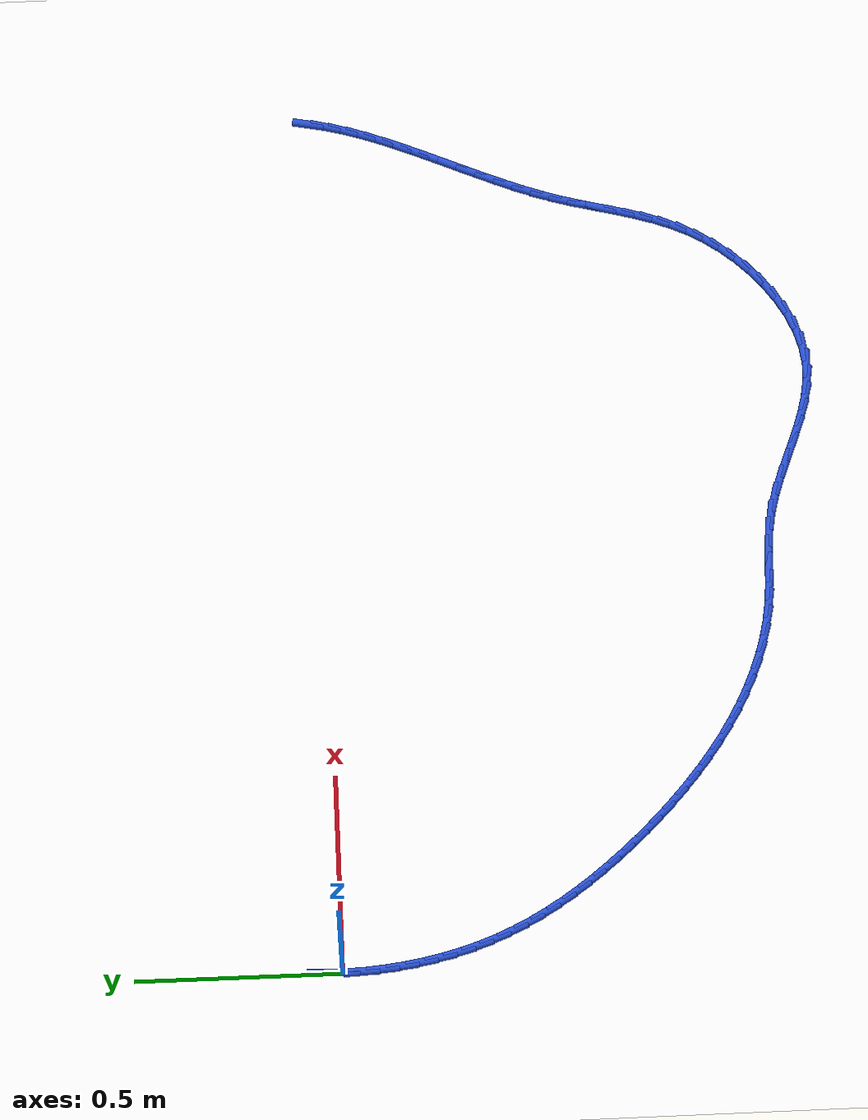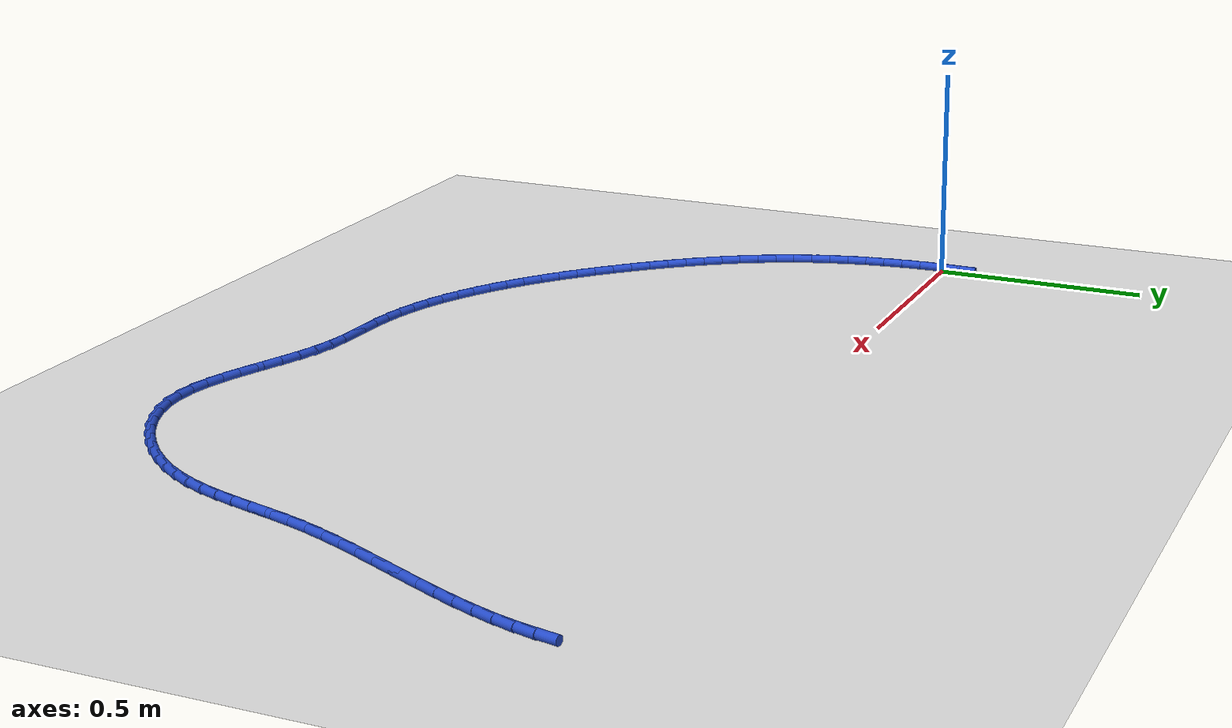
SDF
<sdf version="1.6">
 <world name="default">
  <model name="ground_plane">
   <static>1</static>
   <link name="link">
    <collision name="collision">
     <geometry><plane><normal>0 0 1</normal><size>100 100</size></plane></geometry>
     <surface><friction><ode><mu>100</mu><mu2>50</mu2></ode></friction></surface>
    </collision>
    <visual name="visual">
     <cast_shadows>0</cast_shadows>
     <geometry><plane><normal>0 0 1</normal><size>100 100</size></plane></geometry>
     <material>
      <script><uri>file://media/materials/scripts/gazebo.material</uri><name>Gazebo/WhiteGlow</name></script>
     </material>
    </visual>
   </link>
  </model>
  <model name="line">
   <link name="link_0">
    <pose>4.5102810375396984e-17 4.163336342344337e-17 0.01 0 1.57 1.5652334050064227</pose>
    <collision name="collision">
     <geometry><cylinder><radius>0.01</radius><length>0.08</length></cylinder></geometry>
    </collision>
    <visual name="visual">
     <material>
      <script><name>Gazebo/Blue</name><uri>file://media/materials/scripts/gazebo.material</uri></script>
     </material>
     <geometry><cylinder><radius>0.01</radius><length>0.08</length></cylinder></geometry>
    </visual>
   </link>
   <link name="link_1">
    <pose>0.0002659733554597218 0.04781131605921755 0.01 0 1.57 1.5226781634985618</pose>
    <collision name="collision">
     <geometry><cylinder><radius>0.01</radius><length>0.08</length></cylinder></geometry>
    </collision>
    <visual name="visual">
     <material>
      <script><name>Gazebo/Blue</name><uri>file://media/materials/scripts/gazebo.material</uri></script>
     </material>
     <geometry><cylinder><radius>0.01</radius><length>0.08</length></cylinder></geometry>
    </visual>
   </link>
   <link name="link_83">
    <pose>2.2477748122873398 0.009040442447347093 0.01 0 1.57 1.3710872096856035</pose>
    <collision name="collision">
     <geometry><cylinder><radius>0.01</radius><length>0.08</length></cylinder></geometry>
    </collision>
    <visual name="visual">
     <material>
      <script><name>Gazebo/Blue</name><uri>file://media/materials/scripts/gazebo.material</uri></script>
     </material>
     <geometry><cylinder><radius>0.01</radius><length>0.08</length></cylinder></geometry>
    </visual>
   </link>
   <link name="link_84">
    <pose>2.2389451572891836 -0.03458277958417397 0.01 0 1.57 1.3092850059011312</pose>
    <collision name="collision">
     <geometry><cylinder><radius>0.01</radius><length>0.08</length></cylinder></geometry>
    </collision>
    <visual name="visual">
     <material>
      <script><name>Gazebo/Blue</name><uri>file://media/materials/scripts/gazebo.material</uri></script>
     </material>
     <geometry><cylinder><radius>0.01</radius><length>0.08</length></cylinder></geometry>
    </visual>
   </link>
   <link name="link_85">
    <pose>2.2271120936104505 -0.07879531518507388 0.01 0 1.57 1.2591731441745422</pose>
    <collision name="collision">
     <geometry><cylinder><radius>0.01</radius><length>0.08</length></cylinder></geometry>
    </collision>
    <visual name="visual">
     <material>
      <script><name>Gazebo/Blue</name><uri>file://media/materials/scripts/gazebo.material</uri></script>
     </material>
     <geometry><cylinder><radius>0.01</radius><length>0.08</length></cylinder></geometry>
    </visual>
   </link>
   <link name="link_86">
    <pose>2.212702470968541 -0.12352927860869284 0.01 0 1.57 1.219535306974952</pose>
    <collision name="collision">
     <geometry><cylinder><radius>0.01</radius><length>0.08</length></cylinder></geometry>
    </collision>
    <visual name="visual">
     <material>
      <script><name>Gazebo/Blue</name><uri>file://media/materials/scripts/gazebo.material</uri></script>
     </material>
     <geometry><cylinder><radius>0.01</radius><length>0.08</length></cylinder></geometry>
    </visual>
   </link>
   <link name="link_87">
    <pose>2.1961431390808532 -0.16871678410837168 0.01 0 1.57 1.1892891814576432</pose>
    <collision name="collision">
     <geometry><cylinder><radius>0.01</radius><length>0.08</length></cylinder></geometry>
    </collision>
    <visual name="visual">
     <material>
      <script><name>Gazebo/Blue</name><uri>file://media/materials/scripts/gazebo.material</uri></script>
     </material>
     <geometry><cylinder><radius>0.01</radius><length>0.08</length></cylinder></geometry>
    </visual>
   </link>
   <link name="link_88">
    <pose>2.1778609476647866 -0.21428994593744888 0.01 0 1.57 1.1675504236602035</pose>
    <collision name="collision">
     <geometry><cylinder><radius>0.01</radius><length>0.08</length></cylinder></geometry>
    </collision>
    <visual name="visual">
     <material>
      <script><name>Gazebo/Blue</name><uri>file://media/materials/scripts/gazebo.material</uri></script>
     </material>
     <geometry><cylinder><radius>0.01</radius><length>0.08</length></cylinder></geometry>
    </visual>
   </link>
   <link name="link_89">
    <pose>2.1582827464377425 -0.2601808783492654 0.01 0 1.57 1.1536523906364358</pose>
    <collision name="collision">
     <geometry><cylinder><radius>0.01</radius><length>0.08</length></cylinder></geometry>
    </collision>
    <visual name="visual">
     <material>
      <script><name>Gazebo/Blue</name><uri>file://media/materials/scripts/gazebo.material</uri></script>
     </material>
     <geometry><cylinder><radius>0.01</radius><length>0.08</length></cylinder></geometry>
    </visual>
   </link>
   <link name="link_90">
    <pose>2.1378353851171186 -0.30632169559716116 0.01 0 1.57 1.1471455268170552</pose>
    <collision name="collision">
     <geometry><cylinder><radius>0.01</radius><length>0.08</length></cylinder></geometry>
    </collision>
    <visual name="visual">
     <material>
      <script><name>Gazebo/Blue</name><uri>file://media/materials/scripts/gazebo.material</uri></script>
     </material>
     <geometry><cylinder><radius>0.01</radius><length>0.08</length></cylinder></geometry>
    </visual>
   </link>
   <link name="link_91">
    <pose>2.1169457134203147 -0.3526445119344763 0.01 0 1.57 1.1477899408988608</pose>
    <collision name="collision">
     <geometry><cylinder><radius>0.01</radius><length>0.08</length></cylinder></geometry>
    </collision>
    <visual name="visual">
     <material>
      <script><name>Gazebo/Blue</name><uri>file://media/materials/scripts/gazebo.material</uri></script>
     </material>
     <geometry><cylinder><radius>0.01</radius><length>0.08</length></cylinder></geometry>
    </visual>
   </link>
   <link name="link_92">
    <pose>2.09604058106473 -0.3990814416145517 0.01 0 1.57 1.155547942514735</pose>
    <collision name="collision">
     <geometry><cylinder><radius>0.01</radius><length>0.08</length></cylinder></geometry>
    </collision>
    <visual name="visual">
     <material>
      <script><name>Gazebo/Blue</name><uri>file://media/materials/scripts/gazebo.material</uri></script>
     </material>
     <geometry><cylinder><radius>0.01</radius><length>0.08</length></cylinder></geometry>
    </visual>
   </link>
   <link name="link_93">
    <pose>2.075546837767765 -0.44556459889072597 0.01 0 1.57 1.1705791022941918</pose>
    <collision name="collision">
     <geometry><cylinder><radius>0.01</radius><length>0.08</length></cylinder></geometry>
    </collision>
    <visual name="visual">
     <material>
      <script><name>Gazebo/Blue</name><uri>file://media/materials/scripts/gazebo.material</uri></script>
     </material>
     <geometry><cylinder><radius>0.01</radius><length>0.08</length></cylinder></geometry>
    </visual>
   </link>
   <link name="link_94">
    <pose>2.055891333246818 -0.4920260980163398 0.01 0 1.57 1.1932374862866375</pose>
    <collision name="collision">
     <geometry><cylinder><radius>0.01</radius><length>0.08</length></cylinder></geometry>
    </collision>
    <visual name="visual">
     <material>
      <script><name>Gazebo/Blue</name><uri>file://media/materials/scripts/gazebo.material</uri></script>
     </material>
     <geometry><cylinder><radius>0.01</radius><length>0.08</length></cylinder></geometry>
    </visual>
   </link>
   <link name="link_95">
    <pose>2.0375009172192895 -0.5383980532447334 0.01 0 1.57 1.2240679854335232</pose>
    <collision name="collision">
     <geometry><cylinder><radius>0.01</radius><length>0.08</length></cylinder></geometry>
    </collision>
    <visual name="visual">
     <material>
      <script><name>Gazebo/Blue</name><uri>file://media/materials/scripts/gazebo.material</uri></script>
     </material>
     <geometry><cylinder><radius>0.01</radius><length>0.08</length></cylinder></geometry>
    </visual>
   </link>
   <link name="link_96">
    <pose>2.0208024394025776 -0.5846125788292474 0.01 0 1.57 1.2631511650652147</pose>
    <collision name="collision">
     <geometry><cylinder><radius>0.01</radius><length>0.08</length></cylinder></geometry>
    </collision>
    <visual name="visual">
     <material>
      <script><name>Gazebo/Blue</name><uri>file://media/materials/scripts/gazebo.material</uri></script>
     </material>
     <geometry><cylinder><radius>0.01</radius><length>0.08</length></cylinder></geometry>
    </visual>
   </link>
   <link name="link_97">
    <pose>2.00619030142422 -0.630601312910918 0.01 0 1.57 1.2979649701544727</pose>
    <collision name="collision">
     <geometry><cylinder><radius>0.01</radius><length>0.08</length></cylinder></geometry>
    </collision>
    <visual name="visual">
     <material>
      <script><name>Gazebo/Blue</name><uri>file://media/materials/scripts/gazebo.material</uri></script>
     </material>
     <geometry><cylinder><radius>0.01</radius><length>0.08</length></cylinder></geometry>
    </visual>
   </link>
   <link name="link_98">
    <pose>1.9934072330305035 -0.6762863316195438 0.01 0 1.57 1.3156475928918048</pose>
    <collision name="collision">
     <geometry><cylinder><radius>0.01</radius><length>0.08</length></cylinder></geometry>
    </collision>
    <visual name="visual">
     <material>
      <script><name>Gazebo/Blue</name><uri>file://media/materials/scripts/gazebo.material</uri></script>
     </material>
     <geometry><cylinder><radius>0.01</radius><length>0.08</length></cylinder></geometry>
    </visual>
   </link>
   <link name="link_99">
    <pose>1.9815928967130594 -0.7215808622515872 0.01 0 1.57 1.3148353547931533</pose>
    <collision name="collision">
     <geometry><cylinder><radius>0.01</radius><length>0.08</length></cylinder></geometry>
    </collision>
    <visual name="visual">
     <material>
      <script><name>Gazebo/Blue</name><uri>file://media/materials/scripts/gazebo.material</uri></script>
     </material>
     <geometry><cylinder><radius>0.01</radius><length>0.08</length></cylinder></geometry>
    </visual>
   </link>
   <link name="link_100">
    <pose>1.9698642461114846 -0.7663977988954886 0.01 0 1.57 1.2949529093852161</pose>
    <collision name="collision">
     <geometry><cylinder><radius>0.01</radius><length>0.08</length></cylinder></geometry>
    </collision>
    <visual name="visual">
     <material>
      <script><name>Gazebo/Blue</name><uri>file://media/materials/scripts/gazebo.material</uri></script>
     </material>
     <geometry><cylinder><radius>0.01</radius><length>0.08</length></cylinder></geometry>
    </visual>
   </link>
   <link name="link_101">
    <pose>1.9573382348653758 -0.8106500356396887 0.01 0 1.57 1.2558120415788456</pose>
    <collision name="collision">
     <geometry><cylinder><radius>0.01</radius><length>0.08</length></cylinder></geometry>
    </collision>
    <visual name="visual">
     <material>
      <script><name>Gazebo/Blue</name><uri>file://media/materials/scripts/gazebo.material</uri></script>
     </material>
     <geometry><cylinder><radius>0.01</radius><length>0.08</length></cylinder></geometry>
    </visual>
   </link>
   <link name="link_102">
    <pose>1.943131816614331 -0.8542504665726267 0.01 0 1.57 1.1978496219018502</pose>
    <collision name="collision">
     <geometry><cylinder><radius>0.01</radius><length>0.08</length></cylinder></geometry>
    </collision>
    <visual name="visual">
     <material>
      <script><name>Gazebo/Blue</name><uri>file://media/materials/scripts/gazebo.material</uri></script>
     </material>
     <geometry><cylinder><radius>0.01</radius><length>0.08</length></cylinder></geometry>
    </visual>
   </link>
   <link name="link_103">
    <pose>1.9263619449979466 -0.8971119857827438 0.01 0 1.57 1.122516184168797</pose>
    <collision name="collision">
     <geometry><cylinder><radius>0.01</radius><length>0.08</length></cylinder></geometry>
    </collision>
    <visual name="visual">
     <material>
      <script><name>Gazebo/Blue</name><uri>file://media/materials/scripts/gazebo.material</uri></script>
     </material>
     <geometry><cylinder><radius>0.01</radius><length>0.08</length></cylinder></geometry>
    </visual>
   </link>
   <link name="link_104">
    <pose>1.9061455736558193 -0.9391474873584794 0.01 0 1.57 1.0337504617442803</pose>
    <collision name="collision">
     <geometry><cylinder><radius>0.01</radius><length>0.08</length></cylinder></geometry>
    </collision>
    <visual name="visual">
     <material>
      <script><name>Gazebo/Blue</name><uri>file://media/materials/scripts/gazebo.material</uri></script>
     </material>
     <geometry><cylinder><radius>0.01</radius><length>0.08</length></cylinder></geometry>
    </visual>
   </link>
   <link name="link_105">
    <pose>1.8816797381843622 -0.9802374574217818 0.01 0 1.57 0.944769318520284</pose>
    <collision name="collision">
     <geometry><cylinder><radius>0.01</radius><length>0.08</length></cylinder></geometry>
    </collision>
    <visual name="visual">
     <material>
      <script><name>Gazebo/Blue</name><uri>file://media/materials/scripts/gazebo.material</uri></script>
     </material>
     <geometry><cylinder><radius>0.01</radius><length>0.08</length></cylinder></geometry>
    </visual>
   </link>
   <link name="link_106">
    <pose>1.8529790586135721 -1.0199315179401367 0.01 0 1.57 0.8596093381676212</pose>
    <collision name="collision">
     <geometry><cylinder><radius>0.01</radius><length>0.08</length></cylinder></geometry>
    </collision>
    <visual name="visual">
     <material>
      <script><name>Gazebo/Blue</name><uri>file://media/materials/scripts/gazebo.material</uri></script>
     </material>
     <geometry><cylinder><radius>0.01</radius><length>0.08</length></cylinder></geometry>
    </visual>
   </link>
   <link name="link_107">
    <pose>1.820536353875597 -1.0575857709595085 0.01 0 1.57 0.7752394532283311</pose>
    <collision name="collision">
     <geometry><cylinder><radius>0.01</radius><length>0.08</length></cylinder></geometry>
    </collision>
    <visual name="visual">
     <material>
      <script><name>Gazebo/Blue</name><uri>file://media/materials/scripts/gazebo.material</uri></script>
     </material>
     <geometry><cylinder><radius>0.01</radius><length>0.08</length></cylinder></geometry>
    </visual>
   </link>
   <link name="link_108">
    <pose>1.7848504652892025 -1.092553881356349 0.01 0 1.57 0.6887259955655184</pose>
    <collision name="collision">
     <geometry><cylinder><radius>0.01</radius><length>0.08</length></cylinder></geometry>
    </collision>
    <visual name="visual">
     <material>
      <script><name>Gazebo/Blue</name><uri>file://media/materials/scripts/gazebo.material</uri></script>
     </material>
     <geometry><cylinder><radius>0.01</radius><length>0.08</length></cylinder></geometry>
    </visual>
   </link>
   <link name="link_109">
    <pose>1.7464202341731556 -1.1241895140071094 0.01 0 1.57 0.5971316329668978</pose>
    <collision name="collision">
     <geometry><cylinder><radius>0.01</radius><length>0.08</length></cylinder></geometry>
    </collision>
    <visual name="visual">
     <material>
      <script><name>Gazebo/Blue</name><uri>file://media/materials/scripts/gazebo.material</uri></script>
     </material>
     <geometry><cylinder><radius>0.01</radius><length>0.08</length></cylinder></geometry>
    </visual>
   </link>
   <link name="link_110">
    <pose>1.7057445018462225 -1.1518463337882412 0.01 0 1.57 0.4973859232981495</pose>
    <collision name="collision">
     <geometry><cylinder><radius>0.01</radius><length>0.08</length></cylinder></geometry>
    </collision>
    <visual name="visual">
     <material>
      <script><name>Gazebo/Blue</name><uri>file://media/materials/scripts/gazebo.material</uri></script>
     </material>
     <geometry><cylinder><radius>0.01</radius><length>0.08</length></cylinder></geometry>
    </visual>
   </link>
   <link name="link_111">
    <pose>1.6633221096271695 -1.1748780055761963 0.01 0 1.57 0.38625931138778186</pose>
    <collision name="collision">
     <geometry><cylinder><radius>0.01</radius><length>0.08</length></cylinder></geometry>
    </collision>
    <visual name="visual">
     <material>
      <script><name>Gazebo/Blue</name><uri>file://media/materials/scripts/gazebo.material</uri></script>
     </material>
     <geometry><cylinder><radius>0.01</radius><length>0.08</length></cylinder></geometry>
    </visual>
   </link>
   <link name="link_112">
    <pose>1.6196518988347657 -1.192638194247425 0.01 0 1.57 0.2605446669493578</pose>
    <collision name="collision">
     <geometry><cylinder><radius>0.01</radius><length>0.08</length></cylinder></geometry>
    </collision>
    <visual name="visual">
     <material>
      <script><name>Gazebo/Blue</name><uri>file://media/materials/scripts/gazebo.material</uri></script>
     </material>
     <geometry><cylinder><radius>0.01</radius><length>0.08</length></cylinder></geometry>
    </visual>
   </link>
   <link name="link_113">
    <pose>1.5752327107877753 -1.2044805646783785 0.01 0 1.57 0.11761830782452308</pose>
    <collision name="collision">
     <geometry><cylinder><radius>0.01</radius><length>0.08</length></cylinder></geometry>
    </collision>
    <visual name="visual">
     <material>
      <script><name>Gazebo/Blue</name><uri>file://media/materials/scripts/gazebo.material</uri></script>
     </material>
     <geometry><cylinder><radius>0.01</radius><length>0.08</length></cylinder></geometry>
    </visual>
   </link>
   <link name="link_114">
    <pose>1.5305633634434004 -1.2097588602996894 0.01 0 1.57 -0.0346730230771585</pose>
    <collision name="collision">
     <geometry><cylinder><radius>0.01</radius><length>0.08</length></cylinder></geometry>
    </collision>
    <visual name="visual">
     <material>
      <script><name>Gazebo/Blue</name><uri>file://media/materials/scripts/gazebo.material</uri></script>
     </material>
     <geometry><cylinder><radius>0.01</radius><length>0.08</length></cylinder></geometry>
    </visual>
   </link>
   <link name="link_115">
    <pose>1.4860275164915278 -1.2082140487339141 0.01 0 1.57 -0.16386430653127954</pose>
    <collision name="collision">
     <geometry><cylinder><radius>0.01</radius><length>0.08</length></cylinder></geometry>
    </collision>
    <visual name="visual">
     <material>
      <script><name>Gazebo/Blue</name><uri>file://media/materials/scripts/gazebo.material</uri></script>
     </material>
     <geometry><cylinder><radius>0.01</radius><length>0.08</length></cylinder></geometry>
    </visual>
   </link>
   <link name="link_116">
    <pose>1.441626561703912 -1.2008724884760942 0.01 0 1.57 -0.2610349208139035</pose>
    <collision name="collision">
     <geometry><cylinder><radius>0.01</radius><length>0.08</length></cylinder></geometry>
    </collision>
    <visual name="visual">
     <material>
      <script><name>Gazebo/Blue</name><uri>file://media/materials/scripts/gazebo.material</uri></script>
     </material>
     <geometry><cylinder><radius>0.01</radius><length>0.08</length></cylinder></geometry>
    </visual>
   </link>
   <link name="link_117">
    <pose>1.3972826746458191 -1.1890269056235394 0.01 0 1.57 -0.3271908643853365</pose>
    <collision name="collision">
     <geometry><cylinder><radius>0.01</radius><length>0.08</length></cylinder></geometry>
    </collision>
    <visual name="visual">
     <material>
      <script><name>Gazebo/Blue</name><uri>file://media/materials/scripts/gazebo.material</uri></script>
     </material>
     <geometry><cylinder><radius>0.01</radius><length>0.08</length></cylinder></geometry>
    </visual>
   </link>
   <link name="link_118">
    <pose>1.3529180308825128 -1.1739700262735584 0.01 0 1.57 -0.3647069813679713</pose>
    <collision name="collision">
     <geometry><cylinder><radius>0.01</radius><length>0.08</length></cylinder></geometry>
    </collision>
    <visual name="visual">
     <material>
      <script><name>Gazebo/Blue</name><uri>file://media/materials/scripts/gazebo.material</uri></script>
     </material>
     <geometry><cylinder><radius>0.01</radius><length>0.08</length></cylinder></geometry>
    </visual>
   </link>
   <link name="link_119">
    <pose>1.3084548059792573 -1.1569945765234615 0.01 0 1.57 -0.3755807704922416</pose>
    <collision name="collision">
     <geometry><cylinder><radius>0.01</radius><length>0.08</length></cylinder></geometry>
    </collision>
    <visual name="visual">
     <material>
      <script><name>Gazebo/Blue</name><uri>file://media/materials/scripts/gazebo.material</uri></script>
     </material>
     <geometry><cylinder><radius>0.01</radius><length>0.08</length></cylinder></geometry>
    </visual>
   </link>
   <link name="link_120">
    <pose>1.2638151755013172 -1.1393932824705573 0.01 0 1.57 -0.36070677866257955</pose>
    <collision name="collision">
     <geometry><cylinder><radius>0.01</radius><length>0.08</length></cylinder></geometry>
    </collision>
    <visual name="visual">
     <material>
      <script><name>Gazebo/Blue</name><uri>file://media/materials/scripts/gazebo.material</uri></script>
     </material>
     <geometry><cylinder><radius>0.01</radius><length>0.08</length></cylinder></geometry>
    </visual>
   </link>
   <link name="link_121">
    <pose>1.2189213150139562 -1.1224588702121558 0.01 0 1.57 -0.3197492511933471</pose>
    <collision name="collision">
     <geometry><cylinder><radius>0.01</radius><length>0.08</length></cylinder></geometry>
    </collision>
    <visual name="visual">
     <material>
      <script><name>Gazebo/Blue</name><uri>file://media/materials/scripts/gazebo.material</uri></script>
     </material>
     <geometry><cylinder><radius>0.01</radius><length>0.08</length></cylinder></geometry>
    </visual>
   </link>
   <link name="link_122">
    <pose>1.17369540008244 -1.1074840658455662 0.01 0 1.57 -0.2514341034339196</pose>
    <collision name="collision">
     <geometry><cylinder><radius>0.01</radius><length>0.08</length></cylinder></geometry>
    </collision>
    <visual name="visual">
     <material>
      <script><name>Gazebo/Blue</name><uri>file://media/materials/scripts/gazebo.material</uri></script>
     </material>
     <geometry><cylinder><radius>0.01</radius><length>0.08</length></cylinder></geometry>
    </visual>
   </link>
   <link name="link_123">
    <pose>1.1280596062720325 -1.0957615954680981 0.01 0 1.57 -0.15989867733804816</pose>
    <collision name="collision">
     <geometry><cylinder><radius>0.01</radius><length>0.08</length></cylinder></geometry>
    </collision>
    <visual name="visual">
     <material>
      <script><name>Gazebo/Blue</name><uri>file://media/materials/scripts/gazebo.material</uri></script>
     </material>
     <geometry><cylinder><radius>0.01</radius><length>0.08</length></cylinder></geometry>
    </visual>
   </link>
   <link name="link_124">
    <pose>1.0819623536869678 -1.0883272379630302 0.01 0 1.57 -0.08669663255839329</pose>
    <collision name="collision">
     <geometry><cylinder><radius>0.01</radius><length>0.08</length></cylinder></geometry>
    </collision>
    <visual name="visual">
     <material>
      <script><name>Gazebo/Blue</name><uri>file://media/materials/scripts/gazebo.material</uri></script>
     </material>
     <geometry><cylinder><radius>0.01</radius><length>0.08</length></cylinder></geometry>
    </visual>
   </link>
   <link name="link_125">
    <pose>1.0355485353055958 -1.0842932041260263 0.01 0 1.57 -0.05142858141927176</pose>
    <collision name="collision">
     <geometry><cylinder><radius>0.01</radius><length>0.08</length></cylinder></geometry>
    </collision>
    <visual name="visual">
     <material>
      <script><name>Gazebo/Blue</name><uri>file://media/materials/scripts/gazebo.material</uri></script>
     </material>
     <geometry><cylinder><radius>0.01</radius><length>0.08</length></cylinder></geometry>
    </visual>
   </link>
   <link name="link_126">
    <pose>0.989052095412951 -1.0818998477471935 0.01 0 1.57 -0.0542496132041694</pose>
    <collision name="collision">
     <geometry><cylinder><radius>0.01</radius><length>0.08</length></cylinder></geometry>
    </collision>
    <visual name="visual">
     <material>
      <script><name>Gazebo/Blue</name><uri>file://media/materials/scripts/gazebo.material</uri></script>
     </material>
     <geometry><cylinder><radius>0.01</radius><length>0.08</length></cylinder></geometry>
    </visual>
   </link>
   <link name="link_127">
    <pose>0.942707420040354 -1.0793831976987074 0.01 0 1.57 -0.09549636674643952</pose>
    <collision name="collision">
     <geometry><cylinder><radius>0.01</radius><length>0.08</length></cylinder></geometry>
    </collision>
    <visual name="visual">
     <material>
      <script><name>Gazebo/Blue</name><uri>file://media/materials/scripts/gazebo.material</uri></script>
     </material>
     <geometry><cylinder><radius>0.01</radius><length>0.08</length></cylinder></geometry>
    </visual>
   </link>
   <link name="link_128">
    <pose>0.8967487308590045 -1.074980919443912 0.01 0 1.57 -0.16452201998708527</pose>
    <collision name="collision">
     <geometry><cylinder><radius>0.01</radius><length>0.08</length></cylinder></geometry>
    </collision>
    <visual name="visual">
     <material>
      <script><name>Gazebo/Blue</name><uri>file://media/materials/scripts/gazebo.material</uri></script>
     </material>
     <geometry><cylinder><radius>0.01</radius><length>0.08</length></cylinder></geometry>
    </visual>
   </link>
   <link name="link_129">
    <pose>0.8513585844133812 -1.0674451261726794 0.01 0 1.57 -0.23407146028266704</pose>
    <collision name="collision">
     <geometry><cylinder><radius>0.01</radius><length>0.08</length></cylinder></geometry>
    </collision>
    <visual name="visual">
     <material>
      <script><name>Gazebo/Blue</name><uri>file://media/materials/scripts/gazebo.material</uri></script>
     </material>
     <geometry><cylinder><radius>0.01</radius><length>0.08</length></cylinder></geometry>
    </visual>
   </link>
   <link name="link_130">
    <pose>0.8065946460625041 -1.056771516264758 0.01 0 1.57 -0.2997983496124937</pose>
    <collision name="collision">
     <geometry><cylinder><radius>0.01</radius><length>0.08</length></cylinder></geometry>
    </collision>
    <visual name="visual">
     <material>
      <script><name>Gazebo/Blue</name><uri>file://media/materials/scripts/gazebo.material</uri></script>
     </material>
     <geometry><cylinder><radius>0.01</radius><length>0.08</length></cylinder></geometry>
    </visual>
   </link>
   <link name="link_131">
    <pose>0.7624960835695561 -1.0431399751275616 0.01 0 1.57 -0.3615322469296297</pose>
    <collision name="collision">
     <geometry><cylinder><radius>0.01</radius><length>0.08</length></cylinder></geometry>
    </collision>
    <visual name="visual">
     <material>
      <script><name>Gazebo/Blue</name><uri>file://media/materials/scripts/gazebo.material</uri></script>
     </material>
     <geometry><cylinder><radius>0.01</radius><length>0.08</length></cylinder></geometry>
    </visual>
   </link>
   <link name="link_132">
    <pose>0.7191020646977218 -1.0267303881685048 0.01 0 1.57 -0.4192430571213529</pose>
    <collision name="collision">
     <geometry><cylinder><radius>0.01</radius><length>0.08</length></cylinder></geometry>
    </collision>
    <visual name="visual">
     <material>
      <script><name>Gazebo/Blue</name><uri>file://media/materials/scripts/gazebo.material</uri></script>
     </material>
     <geometry><cylinder><radius>0.01</radius><length>0.08</length></cylinder></geometry>
    </visual>
   </link>
   <link name="link_133">
    <pose>0.6764517572101839 -1.0077226407950013 0.01 0 1.57 -0.47301028891773533</pose>
    <collision name="collision">
     <geometry><cylinder><radius>0.01</radius><length>0.08</length></cylinder></geometry>
    </collision>
    <visual name="visual">
     <material>
      <script><name>Gazebo/Blue</name><uri>file://media/materials/scripts/gazebo.material</uri></script>
     </material>
     <geometry><cylinder><radius>0.01</radius><length>0.08</length></cylinder></geometry>
    </visual>
   </link>
   <link name="link_134">
    <pose>0.6345843288701252 -0.9862966184144649 0.01 0 1.57 -0.522992831107684</pose>
    <collision name="collision">
     <geometry><cylinder><radius>0.01</radius><length>0.08</length></cylinder></geometry>
    </collision>
    <visual name="visual">
     <material>
      <script><name>Gazebo/Blue</name><uri>file://media/materials/scripts/gazebo.material</uri></script>
     </material>
     <geometry><cylinder><radius>0.01</radius><length>0.08</length></cylinder></geometry>
    </visual>
   </link>
   <link name="link_135">
    <pose>0.5935389474407294 -0.9626322064343104 0.01 0 1.57 -0.5694023302196057</pose>
    <collision name="collision">
     <geometry><cylinder><radius>0.01</radius><length>0.08</length></cylinder></geometry>
    </collision>
    <visual name="visual">
     <material>
      <script><name>Gazebo/Blue</name><uri>file://media/materials/scripts/gazebo.material</uri></script>
     </material>
     <geometry><cylinder><radius>0.01</radius><length>0.08</length></cylinder></geometry>
    </visual>
   </link>
   <link name="link_136">
    <pose>0.5533547806851792 -0.9369092902619508 0.01 0 1.57 -0.6124815496872822</pose>
    <collision name="collision">
     <geometry><cylinder><radius>0.01</radius><length>0.08</length></cylinder></geometry>
    </collision>
    <visual name="visual">
     <material>
      <script><name>Gazebo/Blue</name><uri>file://media/materials/scripts/gazebo.material</uri></script>
     </material>
     <geometry><cylinder><radius>0.01</radius><length>0.08</length></cylinder></geometry>
    </visual>
   </link>
   <link name="link_137">
    <pose>0.5140709963666588 -0.9093077553048008 0.01 0 1.57 -0.6524878996812652</pose>
    <collision name="collision">
     <geometry><cylinder><radius>0.01</radius><length>0.08</length></cylinder></geometry>
    </collision>
    <visual name="visual">
     <material>
      <script><name>Gazebo/Blue</name><uri>file://media/materials/scripts/gazebo.material</uri></script>
     </material>
     <geometry><cylinder><radius>0.01</radius><length>0.08</length></cylinder></geometry>
    </visual>
   </link>
   <link name="link_138">
    <pose>0.4757267622483511 -0.8800074869702751 0.01 0 1.57 -0.6896816441780284</pose>
    <collision name="collision">
     <geometry><cylinder><radius>0.01</radius><length>0.08</length></cylinder></geometry>
    </collision>
    <visual name="visual">
     <material>
      <script><name>Gazebo/Blue</name><uri>file://media/materials/scripts/gazebo.material</uri></script>
     </material>
     <geometry><cylinder><radius>0.01</radius><length>0.08</length></cylinder></geometry>
    </visual>
   </link>
   <link name="link_139">
    <pose>0.43836124609343907 -0.8491883706657863 0.01 0 1.57 -0.724317996501138</pose>
    <collision name="collision">
     <geometry><cylinder><radius>0.01</radius><length>0.08</length></cylinder></geometry>
    </collision>
    <visual name="visual">
     <material>
      <script><name>Gazebo/Blue</name><uri>file://media/materials/scripts/gazebo.material</uri></script>
     </material>
     <geometry><cylinder><radius>0.01</radius><length>0.08</length></cylinder></geometry>
    </visual>
   </link>
   <link name="link_140">
    <pose>0.40201361566510607 -0.8170302917987496 0.01 0 1.57 -0.7566422657806137</pose>
    <collision name="collision">
     <geometry><cylinder><radius>0.01</radius><length>0.08</length></cylinder></geometry>
    </collision>
    <visual name="visual">
     <material>
      <script><name>Gazebo/Blue</name><uri>file://media/materials/scripts/gazebo.material</uri></script>
     </material>
     <geometry><cylinder><radius>0.01</radius><length>0.08</length></cylinder></geometry>
    </visual>
   </link>
   <link name="link_141">
    <pose>0.366723038726535 -0.7837131357765781 0.01 0 1.57 -0.78688729993322</pose>
    <collision name="collision">
     <geometry><cylinder><radius>0.01</radius><length>0.08</length></cylinder></geometry>
    </collision>
    <visual name="visual">
     <material>
      <script><name>Gazebo/Blue</name><uri>file://media/materials/scripts/gazebo.material</uri></script>
     </material>
     <geometry><cylinder><radius>0.01</radius><length>0.08</length></cylinder></geometry>
    </visual>
   </link>
   <link name="link_142">
    <pose>0.3325286830409099 -0.7494167880066865 0.01 0 1.57 -0.8152726088675735</pose>
    <collision name="collision">
     <geometry><cylinder><radius>0.01</radius><length>0.08</length></cylinder></geometry>
    </collision>
    <visual name="visual">
     <material>
      <script><name>Gazebo/Blue</name><uri>file://media/materials/scripts/gazebo.material</uri></script>
     </material>
     <geometry><cylinder><radius>0.01</radius><length>0.08</length></cylinder></geometry>
    </visual>
   </link>
   <link name="link_143">
    <pose>0.29946971637141373 -0.7143211338964892 0.01 0 1.57 -0.8423897195751058</pose>
    <collision name="collision">
     <geometry><cylinder><radius>0.01</radius><length>0.08</length></cylinder></geometry>
    </collision>
    <visual name="visual">
     <material>
      <script><name>Gazebo/Blue</name><uri>file://media/materials/scripts/gazebo.material</uri></script>
     </material>
     <geometry><cylinder><radius>0.01</radius><length>0.08</length></cylinder></geometry>
    </visual>
   </link>
   <link name="link_144">
    <pose>0.26759248767744376 -0.6785864179346959 0.01 0 1.57 -0.8712835294372984</pose>
    <collision name="collision">
     <geometry><cylinder><radius>0.01</radius><length>0.08</length></cylinder></geometry>
    </collision>
    <visual name="visual">
     <material>
      <script><name>Gazebo/Blue</name><uri>file://media/materials/scripts/gazebo.material</uri></script>
     </material>
     <geometry><cylinder><radius>0.01</radius><length>0.08</length></cylinder></geometry>
    </visual>
   </link>
   <link name="link_145">
    <pose>0.23699697475258563 -0.642226207156697 0.01 0 1.57 -0.9033614048583073</pose>
    <collision name="collision">
     <geometry><cylinder><radius>0.01</radius><length>0.08</length></cylinder></geometry>
    </collision>
    <visual name="visual">
     <material>
      <script><name>Gazebo/Blue</name><uri>file://media/materials/scripts/gazebo.material</uri></script>
     </material>
     <geometry><cylinder><radius>0.01</radius><length>0.08</length></cylinder></geometry>
    </visual>
   </link>
   <link name="link_146">
    <pose>0.20780741101830916 -0.6051877282833739 0.01 0 1.57 -0.9387128336245846</pose>
    <collision name="collision">
     <geometry><cylinder><radius>0.01</radius><length>0.08</length></cylinder></geometry>
    </collision>
    <visual name="visual">
     <material>
      <script><name>Gazebo/Blue</name><uri>file://media/materials/scripts/gazebo.material</uri></script>
     </material>
     <geometry><cylinder><radius>0.01</radius><length>0.08</length></cylinder></geometry>
    </visual>
   </link>
   <link name="link_147">
    <pose>0.1801481490823851 -0.5674178820553204 0.01 0 1.57 -0.9773951636664694</pose>
    <collision name="collision">
     <geometry><cylinder><radius>0.01</radius><length>0.08</length></cylinder></geometry>
    </collision>
    <visual name="visual">
     <material>
      <script><name>Gazebo/Blue</name><uri>file://media/materials/scripts/gazebo.material</uri></script>
     </material>
     <geometry><cylinder><radius>0.01</radius><length>0.08</length></cylinder></geometry>
    </visual>
   </link>
   <link name="link_148">
    <pose>0.15414354155258272 -0.5288635692131287 0.01 0 1.57 -1.019427820020492</pose>
    <collision name="collision">
     <geometry><cylinder><radius>0.01</radius><length>0.08</length></cylinder></geometry>
    </collision>
    <visual name="visual">
     <material>
      <script><name>Gazebo/Blue</name><uri>file://media/materials/scripts/gazebo.material</uri></script>
     </material>
     <geometry><cylinder><radius>0.01</radius><length>0.08</length></cylinder></geometry>
    </visual>
   </link>
   <link name="link_149">
    <pose>0.12991794103667187 -0.4894716904973912 0.01 0 1.57 -1.0647788021864086</pose>
    <collision name="collision">
     <geometry><cylinder><radius>0.01</radius><length>0.08</length></cylinder></geometry>
    </collision>
    <visual name="visual">
     <material>
      <script><name>Gazebo/Blue</name><uri>file://media/materials/scripts/gazebo.material</uri></script>
     </material>
     <geometry><cylinder><radius>0.01</radius><length>0.08</length></cylinder></geometry>
    </visual>
   </link>
   <link name="link_150">
    <pose>0.1075957001424223 -0.44918914664870035 0.01 0 1.57 -1.1133507659364337</pose>
    <collision name="collision">
     <geometry><cylinder><radius>0.01</radius><length>0.08</length></cylinder></geometry>
    </collision>
    <visual name="visual">
     <material>
      <script><name>Gazebo/Blue</name><uri>file://media/materials/scripts/gazebo.material</uri></script>
     </material>
     <geometry><cylinder><radius>0.01</radius><length>0.08</length></cylinder></geometry>
    </visual>
   </link>
   <link name="link_151">
    <pose>0.08730117147760345 -0.4079628384076482 0.01 0 1.57 -1.1649199919798852</pose>
    <collision name="collision">
     <geometry><cylinder><radius>0.01</radius><length>0.08</length></cylinder></geometry>
    </collision>
    <visual name="visual">
     <material>
      <script><name>Gazebo/Blue</name><uri>file://media/materials/scripts/gazebo.material</uri></script>
     </material>
     <geometry><cylinder><radius>0.01</radius><length>0.08</length></cylinder></geometry>
    </visual>
   </link>
   <link name="link_152">
    <pose>0.06915695551752124 -0.3657411933357544 0.01 0 1.57 -1.2173759370304924</pose>
    <collision name="collision">
     <geometry><cylinder><radius>0.01</radius><length>0.08</length></cylinder></geometry>
    </collision>
    <visual name="visual">
     <material>
      <script><name>Gazebo/Blue</name><uri>file://media/materials/scripts/gazebo.material</uri></script>
     </material>
     <geometry><cylinder><radius>0.01</radius><length>0.08</length></cylinder></geometry>
    </visual>
   </link>
   <link name="link_153">
    <pose>0.05321688246771806 -0.3225325659059308 0.01 0 1.57 -1.2681648994941586</pose>
    <collision name="collision">
     <geometry><cylinder><radius>0.01</radius><length>0.08</length></cylinder></geometry>
    </collision>
    <visual name="visual">
     <material>
      <script><name>Gazebo/Blue</name><uri>file://media/materials/scripts/gazebo.material</uri></script>
     </material>
     <geometry><cylinder><radius>0.01</radius><length>0.08</length></cylinder></geometry>
    </visual>
   </link>
   <link name="link_154">
    <pose>0.03944506608084903 -0.27842349015823903 0.01 0 1.57 -1.3171192563542833</pose>
    <collision name="collision">
     <geometry><cylinder><radius>0.01</radius><length>0.08</length></cylinder></geometry>
    </collision>
    <visual name="visual">
     <material>
      <script><name>Gazebo/Blue</name><uri>file://media/materials/scripts/gazebo.material</uri></script>
     </material>
     <geometry><cylinder><radius>0.01</radius><length>0.08</length></cylinder></geometry>
    </visual>
   </link>
   <link name="link_155">
    <pose>0.02779958568403465 -0.23350575857487801 0.01 0 1.57 -1.3642701008474543</pose>
    <collision name="collision">
     <geometry><cylinder><radius>0.01</radius><length>0.08</length></cylinder></geometry>
    </collision>
    <visual name="visual">
     <material>
      <script><name>Gazebo/Blue</name><uri>file://media/materials/scripts/gazebo.material</uri></script>
     </material>
     <geometry><cylinder><radius>0.01</radius><length>0.08</length></cylinder></geometry>
    </visual>
   </link>
   <link name="link_156">
    <pose>0.01823852060439527 -0.1878711636380459 0.01 0 1.57 -1.4096754690133833</pose>
    <collision name="collision">
     <geometry><cylinder><radius>0.01</radius><length>0.08</length></cylinder></geometry>
    </collision>
    <visual name="visual">
     <material>
      <script><name>Gazebo/Blue</name><uri>file://media/materials/scripts/gazebo.material</uri></script>
     </material>
     <geometry><cylinder><radius>0.01</radius><length>0.08</length></cylinder></geometry>
    </visual>
   </link>
   <link name="link_157">
    <pose>0.010719950169051742 -0.14161149782994356 0.01 0 1.57 -1.4534147401828965</pose>
    <collision name="collision">
     <geometry><cylinder><radius>0.01</radius><length>0.08</length></cylinder></geometry>
    </collision>
    <visual name="visual">
     <material>
      <script><name>Gazebo/Blue</name><uri>file://media/materials/scripts/gazebo.material</uri></script>
     </material>
     <geometry><cylinder><radius>0.01</radius><length>0.08</length></cylinder></geometry>
    </visual>
   </link>
   <link name="link_158">
    <pose>0.00520195370512436 -0.09481855363276906 0.01 0 1.57 -1.4955836281439114</pose>
    <collision name="collision">
     <geometry><cylinder><radius>0.01</radius><length>0.08</length></cylinder></geometry>
    </collision>
    <visual name="visual">
     <material>
      <script><name>Gazebo/Blue</name><uri>file://media/materials/scripts/gazebo.material</uri></script>
     </material>
     <geometry><cylinder><radius>0.01</radius><length>0.08</length></cylinder></geometry>
    </visual>
   </link>
   <link name="link_159">
    <pose>0.0016426105397336268 -0.04758412352872154 0.01 0 1.57 -1.5362898902508264</pose>
    <collision name="collision">
     <geometry><cylinder><radius>0.01</radius><length>0.08</length></cylinder></geometry>
    </collision>
    <visual name="visual">
     <material>
      <script><name>Gazebo/Blue</name><uri>file://media/materials/scripts/gazebo.material</uri></script>
     </material>
     <geometry><cylinder><radius>0.01</radius><length>0.08</length></cylinder></geometry>
    </visual>
   </link>
   <link name="link_160">
    <pose>4.85722573273506e-17 -8.326672684688674e-17 0.01 0 1.57 1.5659428618265387</pose>
    <collision name="collision">
     <geometry><cylinder><radius>0.01</radius><length>0.08</length></cylinder></geometry>
    </collision>
    <visual name="visual">
     <material>
      <script><name>Gazebo/Blue</name><uri>file://media/materials/scripts/gazebo.material</uri></script>
     </material>
     <geometry><cylinder><radius>0.01</radius><length>0.08</length></cylinder></geometry>
    </visual>
   </link>
   <link name="link_161">
    <pose>0.00023220141304414535 0.04784202447119718 0.01 0 1.57 1.5659428618265385</pose>
    <collision name="collision">
     <geometry><cylinder><radius>0.01</radius><length>0.08</length></cylinder></geometry>
    </collision>
    <visual name="visual">
     <material>
      <script><name>Gazebo/Blue</name><uri>file://media/materials/scripts/gazebo.material</uri></script>
     </material>
     <geometry><cylinder><radius>0.01</radius><length>0.08</length></cylinder></geometry>
    </visual>
   </link>
  </model>
 </world>
</sdf>
